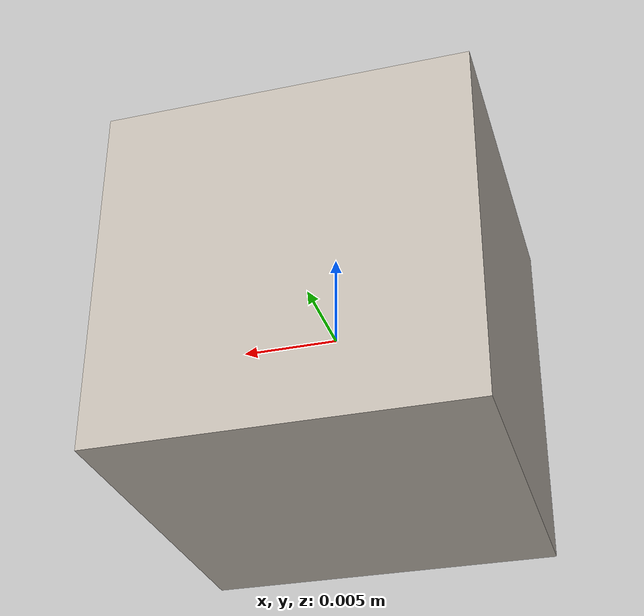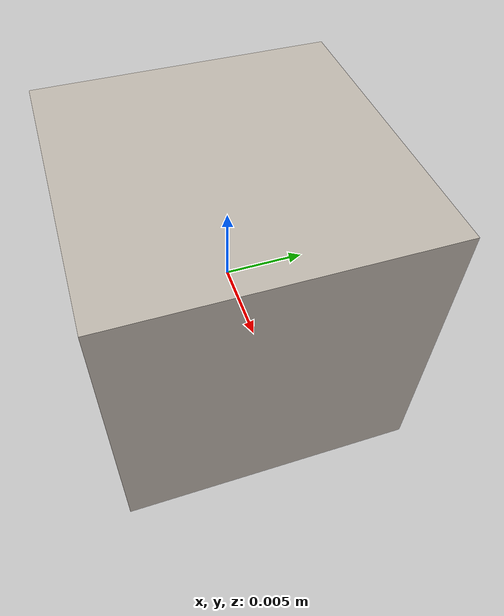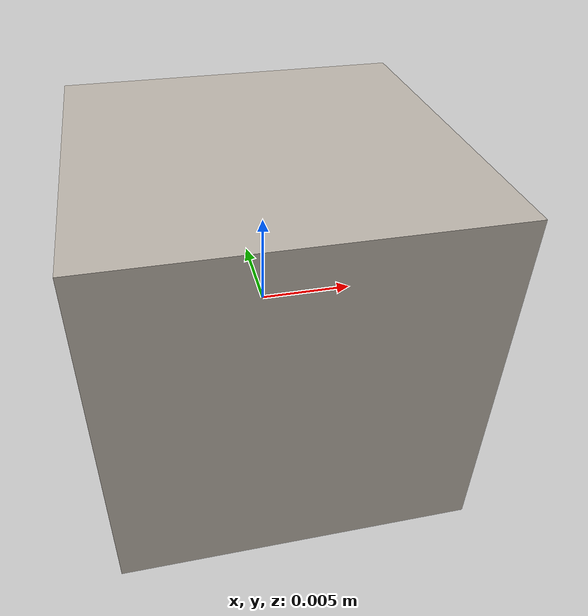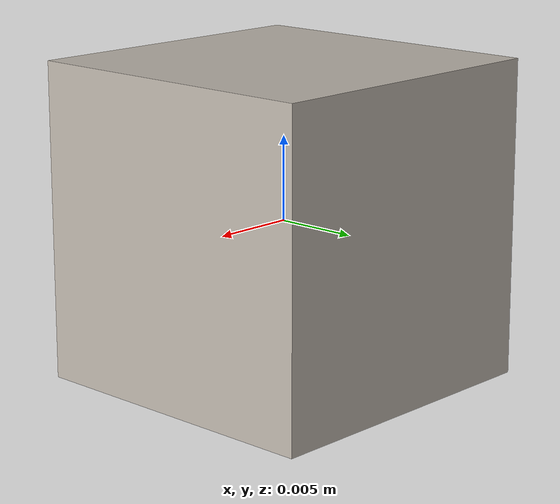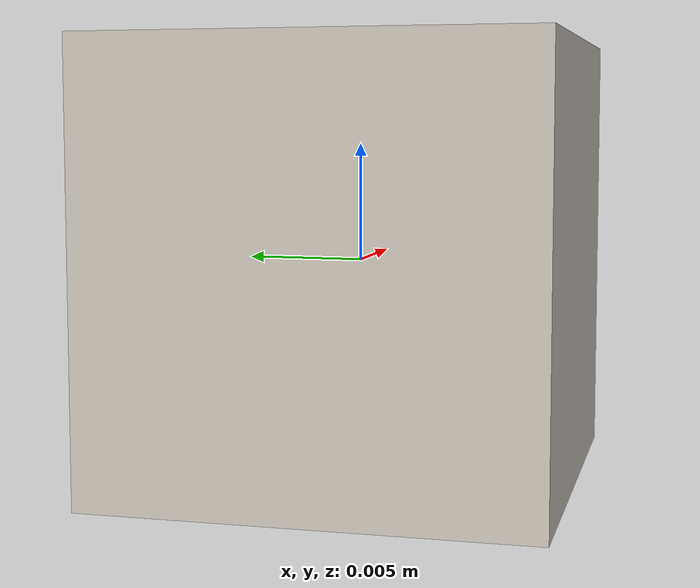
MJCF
<?xml version="1.0" encoding="UTF-8"?>
<mujoco model="aruco_cube">
  <!-- Box: 18.75 x 18.75 x 18.75 mm -->
  <!-- Origin at cube center, XYZ axes match detect_cube.py -->
  <!-- Units: meters -->

  <compiler angle="radian" meshdir="."/>

  <asset>
    <texture name="cube_tex" type="2d" file="cube_atlas.png"/>
    <material name="cube_mat" texture="cube_tex" specular="0.1" shininess="0.1"/>
    <mesh name="cube_mesh" file="cube.obj"/>
  </asset>

  <worldbody>
    <body name="cube" pos="0 0 0">
      <freejoint name="cube_joint"/>
      <geom name="cube_visual" type="mesh" mesh="cube_mesh" material="cube_mat" contype="0" conaffinity="0" group="1" density="0"/>
      <geom name="cube_collision" type="box" size="0.009375 0.009375 0.009375" density="1250" rgba="0.5 0.5 0.5 0" contype="1" conaffinity="1" group="2"/>
      <site name="cube_center" pos="0 0 0" size="0.001"/>
    </body>
  </worldbody>
</mujoco>
